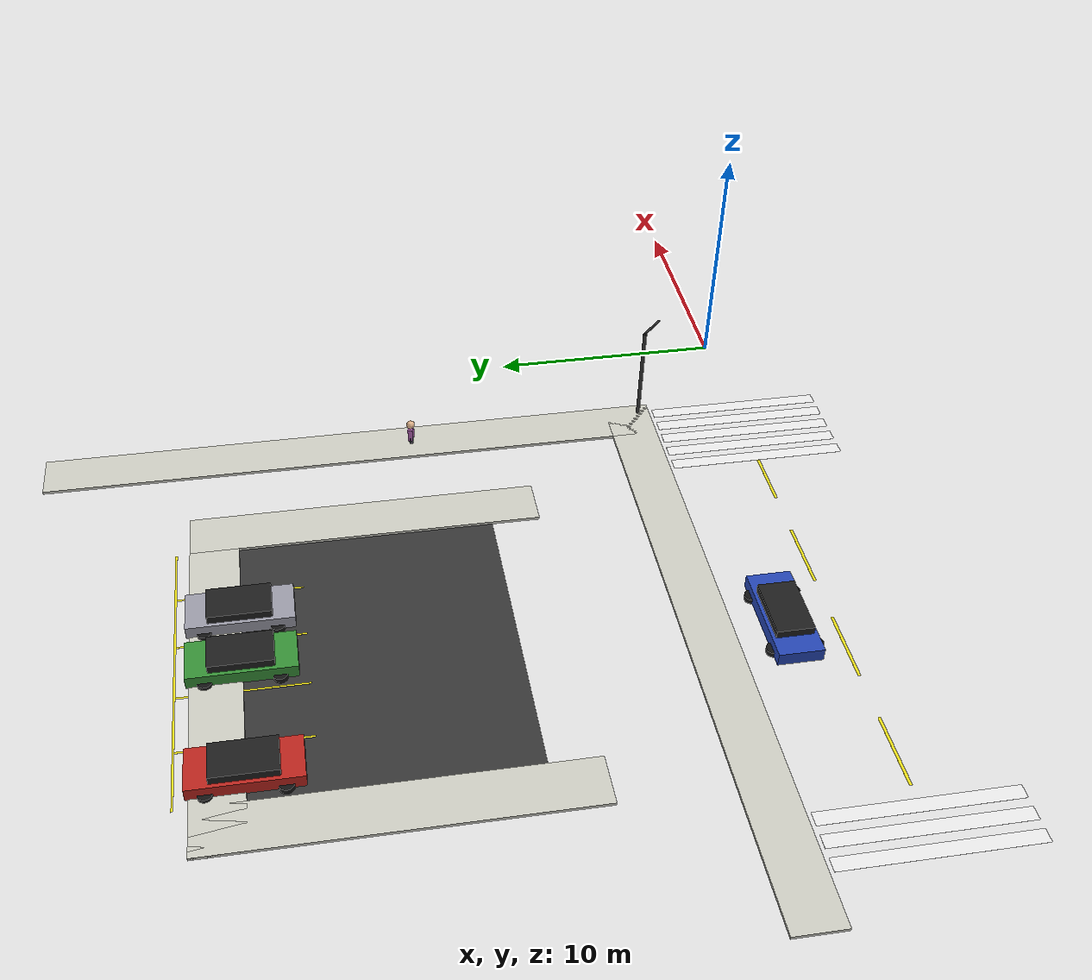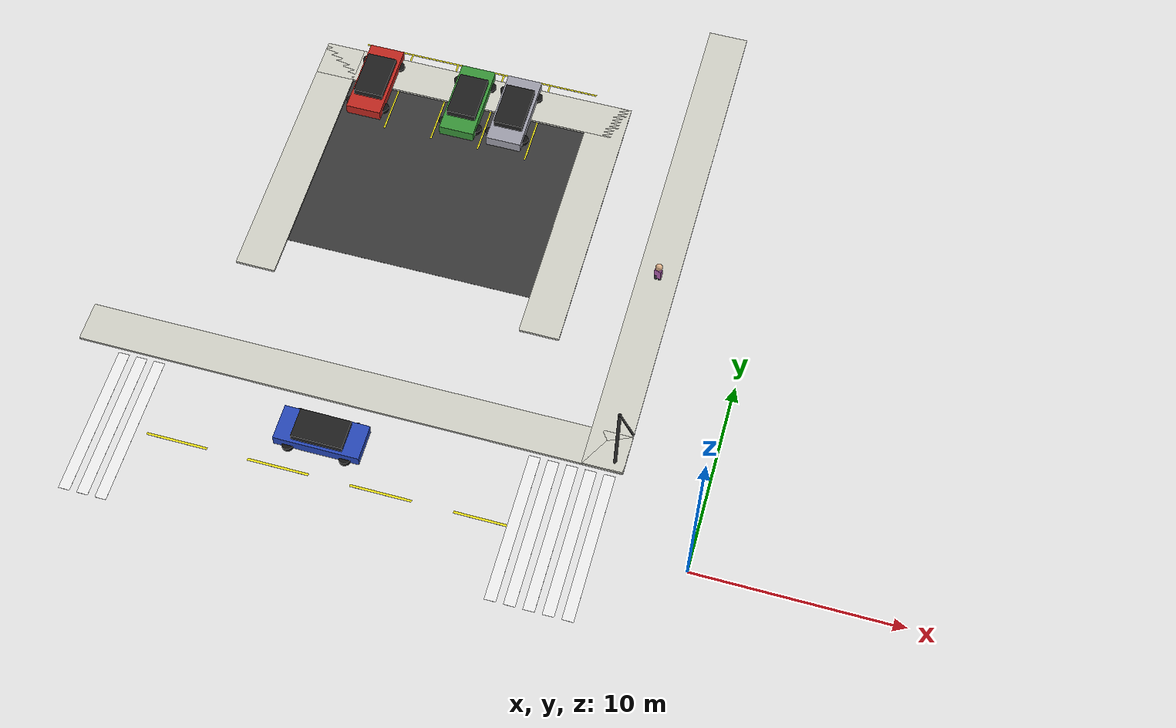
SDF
<sdf version="1.9">
 <world name="city">
  <model name="sw_v_18">
   <static>true</static>
   <pose>-5.0 17.5 0.065 0 0 0</pose>
   <link name="l">
    <collision name="c"><geometry><box><size>2.0 27.0 0.12</size></box></geometry></collision>
    <visual name="v">
     <geometry><box><size>2.0 27.0 0.12</size></box></geometry>
     <material>
      <ambient>0.82 0.82 0.78 1</ambient>
      <diffuse>0.82 0.82 0.78 1</diffuse>
      <specular>0.04 0.04 0.04 1</specular>
     </material>
    </visual>
   </link>
  </model>
  <model name="sw_h_45">
   <static>true</static>
   <pose>-17.5 5.0 0.065 0 0 0</pose>
   <link name="l">
    <collision name="c"><geometry><box><size>27.0 2.0 0.12</size></box></geometry></collision>
    <visual name="v">
     <geometry><box><size>27.0 2.0 0.12</size></box></geometry>
     <material>
      <ambient>0.82 0.82 0.78 1</ambient>
      <diffuse>0.82 0.82 0.78 1</diffuse>
      <specular>0.04 0.04 0.04 1</specular>
     </material>
    </visual>
   </link>
  </model>
  <model name="sw_corner_73">
   <static>true</static>
   <pose>-5.0 5.0 0.065 0 0 0</pose>
   <link name="l">
    <collision name="c"><geometry><box><size>2.0 2.0 0.12</size></box></geometry></collision>
    <visual name="v">
     <geometry><box><size>2.0 2.0 0.12</size></box></geometry>
     <material>
      <ambient>0.82 0.82 0.78 1</ambient>
      <diffuse>0.82 0.82 0.78 1</diffuse>
      <specular>0.04 0.04 0.04 1</specular>
     </material>
    </visual>
   </link>
  </model>
  <model name="cw_e_123">
   <static>true</static>
   <pose>-28.625 0.0 0.013000000000000001 0 0 0</pose>
   <link name="l">
    <visual name="v">
     <geometry><box><size>0.55 7.6 0.005</size></box></geometry>
     <material>
      <ambient>0.94 0.94 0.94 1</ambient>
      <diffuse>0.94 0.94 0.94 1</diffuse>
      <specular>0.04 0.04 0.04 1</specular>
     </material>
    </visual>
   </link>
  </model>
  <model name="cw_e_127">
   <static>true</static>
   <pose>-27.725 0.0 0.013000000000000001 0 0 0</pose>
   <link name="l">
    <visual name="v">
     <geometry><box><size>0.55 7.6 0.005</size></box></geometry>
     <material>
      <ambient>0.94 0.94 0.94 1</ambient>
      <diffuse>0.94 0.94 0.94 1</diffuse>
      <specular>0.04 0.04 0.04 1</specular>
     </material>
    </visual>
   </link>
  </model>
  <model name="cw_e_131">
   <static>true</static>
   <pose>-26.825 0.0 0.013000000000000001 0 0 0</pose>
   <link name="l">
    <visual name="v">
     <geometry><box><size>0.55 7.6 0.005</size></box></geometry>
     <material>
      <ambient>0.94 0.94 0.94 1</ambient>
      <diffuse>0.94 0.94 0.94 1</diffuse>
      <specular>0.04 0.04 0.04 1</specular>
     </material>
    </visual>
   </link>
  </model>
  <model name="cw_w_174">
   <static>true</static>
   <pose>-4.575 0.0 0.013000000000000001 0 0 0</pose>
   <link name="l">
    <visual name="v">
     <geometry><box><size>0.55 7.6 0.005</size></box></geometry>
     <material>
      <ambient>0.94 0.94 0.94 1</ambient>
      <diffuse>0.94 0.94 0.94 1</diffuse>
      <specular>0.04 0.04 0.04 1</specular>
     </material>
    </visual>
   </link>
  </model>
  <model name="cw_w_178">
   <static>true</static>
   <pose>-5.475 0.0 0.013000000000000001 0 0 0</pose>
   <link name="l">
    <visual name="v">
     <geometry><box><size>0.55 7.6 0.005</size></box></geometry>
     <material>
      <ambient>0.94 0.94 0.94 1</ambient>
      <diffuse>0.94 0.94 0.94 1</diffuse>
      <specular>0.04 0.04 0.04 1</specular>
     </material>
    </visual>
   </link>
  </model>
  <model name="cw_w_182">
   <static>true</static>
   <pose>-6.375 0.0 0.013000000000000001 0 0 0</pose>
   <link name="l">
    <visual name="v">
     <geometry><box><size>0.55 7.6 0.005</size></box></geometry>
     <material>
      <ambient>0.94 0.94 0.94 1</ambient>
      <diffuse>0.94 0.94 0.94 1</diffuse>
      <specular>0.04 0.04 0.04 1</specular>
     </material>
    </visual>
   </link>
  </model>
  <model name="cw_w_186">
   <static>true</static>
   <pose>-7.275 0.0 0.013000000000000001 0 0 0</pose>
   <link name="l">
    <visual name="v">
     <geometry><box><size>0.55 7.6 0.005</size></box></geometry>
     <material>
      <ambient>0.94 0.94 0.94 1</ambient>
      <diffuse>0.94 0.94 0.94 1</diffuse>
      <specular>0.04 0.04 0.04 1</specular>
     </material>
    </visual>
   </link>
  </model>
  <model name="cw_w_190">
   <static>true</static>
   <pose>-8.175 0.0 0.013000000000000001 0 0 0</pose>
   <link name="l">
    <visual name="v">
     <geometry><box><size>0.55 7.6 0.005</size></box></geometry>
     <material>
      <ambient>0.94 0.94 0.94 1</ambient>
      <diffuse>0.94 0.94 0.94 1</diffuse>
      <specular>0.04 0.04 0.04 1</specular>
     </material>
    </visual>
   </link>
  </model>
  <model name="dash_367">
   <static>true</static>
   <pose>-24.5 0.0 0.012 0 0 0</pose>
   <link name="l">
    <visual name="v">
     <geometry><box><size>3.0 0.12 0.003</size></box></geometry>
     <material>
      <ambient>0.95 0.9 0.1 1</ambient>
      <diffuse>0.95 0.9 0.1 1</diffuse>
      <specular>0.04 0.04 0.04 1</specular>
     </material>
    </visual>
   </link>
  </model>
  <model name="dash_368">
   <static>true</static>
   <pose>-19.5 0.0 0.012 0 0 0</pose>
   <link name="l">
    <visual name="v">
     <geometry><box><size>3.0 0.12 0.003</size></box></geometry>
     <material>
      <ambient>0.95 0.9 0.1 1</ambient>
      <diffuse>0.95 0.9 0.1 1</diffuse>
      <specular>0.04 0.04 0.04 1</specular>
     </material>
    </visual>
   </link>
  </model>
  <model name="dash_369">
   <static>true</static>
   <pose>-14.5 0.0 0.012 0 0 0</pose>
   <link name="l">
    <visual name="v">
     <geometry><box><size>3.0 0.12 0.003</size></box></geometry>
     <material>
      <ambient>0.95 0.9 0.1 1</ambient>
      <diffuse>0.95 0.9 0.1 1</diffuse>
      <specular>0.04 0.04 0.04 1</specular>
     </material>
    </visual>
   </link>
  </model>
  <model name="dash_370">
   <static>true</static>
   <pose>-9.5 0.0 0.012 0 0 0</pose>
   <link name="l">
    <visual name="v">
     <geometry><box><size>3.0 0.12 0.003</size></box></geometry>
     <material>
      <ambient>0.95 0.9 0.1 1</ambient>
      <diffuse>0.95 0.9 0.1 1</diffuse>
      <specular>0.04 0.04 0.04 1</specular>
     </material>
    </visual>
   </link>
  </model>
  <model name="lot1_slab_404">
   <static>true</static>
   <pose>-17.0 17.5 0.008 0 0 0</pose>
   <link name="l">
    <collision name="c"><geometry><box><size>12.5 10.5 0.005</size></box></geometry></collision>
    <visual name="v">
     <geometry><box><size>12.5 10.5 0.005</size></box></geometry>
     <material>
      <ambient>0.22 0.22 0.22 1</ambient>
      <diffuse>0.22 0.22 0.22 1</diffuse>
      <specular>0.04 0.04 0.04 1</specular>
     </material>
    </visual>
   </link>
  </model>
  <model name="lot1_ln_405">
   <static>true</static>
   <pose>-20.75 22.75 0.012 0 0 0</pose>
   <link name="l">
    <visual name="v">
     <geometry><box><size>0.08 5.0 0.003</size></box></geometry>
     <material>
      <ambient>0.95 0.9 0.1 1</ambient>
      <diffuse>0.95 0.9 0.1 1</diffuse>
      <specular>0.04 0.04 0.04 1</specular>
     </material>
    </visual>
   </link>
  </model>
  <model name="lot1_ln_406">
   <static>true</static>
   <pose>-18.25 22.75 0.012 0 0 0</pose>
   <link name="l">
    <visual name="v">
     <geometry><box><size>0.08 5.0 0.003</size></box></geometry>
     <material>
      <ambient>0.95 0.9 0.1 1</ambient>
      <diffuse>0.95 0.9 0.1 1</diffuse>
      <specular>0.04 0.04 0.04 1</specular>
     </material>
    </visual>
   </link>
  </model>
  <model name="lot1_ln_407">
   <static>true</static>
   <pose>-15.75 22.75 0.012 0 0 0</pose>
   <link name="l">
    <visual name="v">
     <geometry><box><size>0.08 5.0 0.003</size></box></geometry>
     <material>
      <ambient>0.95 0.9 0.1 1</ambient>
      <diffuse>0.95 0.9 0.1 1</diffuse>
      <specular>0.04 0.04 0.04 1</specular>
     </material>
    </visual>
   </link>
  </model>
  <model name="lot1_ln_408">
   <static>true</static>
   <pose>-13.25 22.75 0.012 0 0 0</pose>
   <link name="l">
    <visual name="v">
     <geometry><box><size>0.08 5.0 0.003</size></box></geometry>
     <material>
      <ambient>0.95 0.9 0.1 1</ambient>
      <diffuse>0.95 0.9 0.1 1</diffuse>
      <specular>0.04 0.04 0.04 1</specular>
     </material>
    </visual>
   </link>
  </model>
  <model name="lot1_back_409">
   <static>true</static>
   <pose>-17.0 25.29 0.012 0 0 0</pose>
   <link name="l">
    <visual name="v">
     <geometry><box><size>12.5 0.08 0.003</size></box></geometry>
     <material>
      <ambient>0.95 0.9 0.1 1</ambient>
      <diffuse>0.95 0.9 0.1 1</diffuse>
      <specular>0.04 0.04 0.04 1</specular>
     </material>
    </visual>
   </link>
  </model>
  <model name="lot1_car0_b_410">
   <static>true</static>
   <pose>-22.0 22.75 0.358 0 0 0</pose>
   <link name="l">
    <collision name="c"><geometry><box><size>1.8 4.2 0.55</size></box></geometry></collision>
    <visual name="v">
     <geometry><box><size>1.8 4.2 0.55</size></box></geometry>
     <material>
      <ambient>0.75 0.15 0.12 1</ambient>
      <diffuse>0.75 0.15 0.12 1</diffuse>
      <specular>0.04 0.04 0.04 1</specular>
     </material>
    </visual>
   </link>
  </model>
  <model name="lot1_car0_r_411">
   <static>true</static>
   <pose>-22.0 22.75 0.778 0 0 0</pose>
   <link name="l">
    <collision name="c"><geometry><box><size>1.5 2.5 0.38</size></box></geometry></collision>
    <visual name="v">
     <geometry><box><size>1.5 2.5 0.38</size></box></geometry>
     <material>
      <ambient>0.12 0.12 0.12 1</ambient>
      <diffuse>0.12 0.12 0.12 1</diffuse>
      <specular>0.04 0.04 0.04 1</specular>
     </material>
    </visual>
   </link>
  </model>
  <model name="lot1_car0_w_412">
   <static>true</static>
   <pose>-22.85 21.35 0.158 0 0 1.5708</pose>
   <link name="l">
    <visual name="v">
     <geometry><cylinder><radius>0.28</radius><length>0.22</length></cylinder></geometry>
     <material><ambient>0.08 0.08 0.08 1</ambient><diffuse>0.08 0.08 0.08 1</diffuse></material>
    </visual>
   </link>
  </model>
  <model name="lot1_car0_w_413">
   <static>true</static>
   <pose>-21.15 21.35 0.158 0 0 1.5708</pose>
   <link name="l">
    <visual name="v">
     <geometry><cylinder><radius>0.28</radius><length>0.22</length></cylinder></geometry>
     <material><ambient>0.08 0.08 0.08 1</ambient><diffuse>0.08 0.08 0.08 1</diffuse></material>
    </visual>
   </link>
  </model>
  <model name="lot1_car0_w_414">
   <static>true</static>
   <pose>-22.85 24.15 0.158 0 0 1.5708</pose>
   <link name="l">
    <visual name="v">
     <geometry><cylinder><radius>0.28</radius><length>0.22</length></cylinder></geometry>
     <material><ambient>0.08 0.08 0.08 1</ambient><diffuse>0.08 0.08 0.08 1</diffuse></material>
    </visual>
   </link>
  </model>
  <model name="lot1_car0_w_415">
   <static>true</static>
   <pose>-21.15 24.15 0.158 0 0 1.5708</pose>
   <link name="l">
    <visual name="v">
     <geometry><cylinder><radius>0.28</radius><length>0.22</length></cylinder></geometry>
     <material><ambient>0.08 0.08 0.08 1</ambient><diffuse>0.08 0.08 0.08 1</diffuse></material>
    </visual>
   </link>
  </model>
  <model name="lot1_car2_b_416">
   <static>true</static>
   <pose>-17.0 22.75 0.358 0 0 0</pose>
   <link name="l">
    <collision name="c"><geometry><box><size>1.8 4.2 0.55</size></box></geometry></collision>
    <visual name="v">
     <geometry><box><size>1.8 4.2 0.55</size></box></geometry>
     <material>
      <ambient>0.22 0.58 0.22 1</ambient>
      <diffuse>0.22 0.58 0.22 1</diffuse>
      <specular>0.04 0.04 0.04 1</specular>
     </material>
    </visual>
   </link>
  </model>
  <model name="lot1_car2_r_417">
   <static>true</static>
   <pose>-17.0 22.75 0.778 0 0 0</pose>
   <link name="l">
    <collision name="c"><geometry><box><size>1.5 2.5 0.38</size></box></geometry></collision>
    <visual name="v">
     <geometry><box><size>1.5 2.5 0.38</size></box></geometry>
     <material>
      <ambient>0.12 0.12 0.12 1</ambient>
      <diffuse>0.12 0.12 0.12 1</diffuse>
      <specular>0.04 0.04 0.04 1</specular>
     </material>
    </visual>
   </link>
  </model>
  <model name="lot1_car2_w_418">
   <static>true</static>
   <pose>-17.85 21.35 0.158 0 0 1.5708</pose>
   <link name="l">
    <visual name="v">
     <geometry><cylinder><radius>0.28</radius><length>0.22</length></cylinder></geometry>
     <material><ambient>0.08 0.08 0.08 1</ambient><diffuse>0.08 0.08 0.08 1</diffuse></material>
    </visual>
   </link>
  </model>
  <model name="lot1_car2_w_419">
   <static>true</static>
   <pose>-16.15 21.35 0.158 0 0 1.5708</pose>
   <link name="l">
    <visual name="v">
     <geometry><cylinder><radius>0.28</radius><length>0.22</length></cylinder></geometry>
     <material><ambient>0.08 0.08 0.08 1</ambient><diffuse>0.08 0.08 0.08 1</diffuse></material>
    </visual>
   </link>
  </model>
  <model name="lot1_car2_w_420">
   <static>true</static>
   <pose>-17.85 24.15 0.158 0 0 1.5708</pose>
   <link name="l">
    <visual name="v">
     <geometry><cylinder><radius>0.28</radius><length>0.22</length></cylinder></geometry>
     <material><ambient>0.08 0.08 0.08 1</ambient><diffuse>0.08 0.08 0.08 1</diffuse></material>
    </visual>
   </link>
  </model>
  <model name="lot1_car2_w_421">
   <static>true</static>
   <pose>-16.15 24.15 0.158 0 0 1.5708</pose>
   <link name="l">
    <visual name="v">
     <geometry><cylinder><radius>0.28</radius><length>0.22</length></cylinder></geometry>
     <material><ambient>0.08 0.08 0.08 1</ambient><diffuse>0.08 0.08 0.08 1</diffuse></material>
    </visual>
   </link>
  </model>
  <model name="lot1_car3_b_422">
   <static>true</static>
   <pose>-14.5 22.75 0.358 0 0 0</pose>
   <link name="l">
    <collision name="c"><geometry><box><size>1.8 4.2 0.55</size></box></geometry></collision>
    <visual name="v">
     <geometry><box><size>1.8 4.2 0.55</size></box></geometry>
     <material>
      <ambient>0.62 0.62 0.67 1</ambient>
      <diffuse>0.62 0.62 0.67 1</diffuse>
      <specular>0.04 0.04 0.04 1</specular>
     </material>
    </visual>
   </link>
  </model>
  <model name="lot1_car3_r_423">
   <static>true</static>
   <pose>-14.5 22.75 0.778 0 0 0</pose>
   <link name="l">
    <collision name="c"><geometry><box><size>1.5 2.5 0.38</size></box></geometry></collision>
    <visual name="v">
     <geometry><box><size>1.5 2.5 0.38</size></box></geometry>
     <material>
      <ambient>0.12 0.12 0.12 1</ambient>
      <diffuse>0.12 0.12 0.12 1</diffuse>
      <specular>0.04 0.04 0.04 1</specular>
     </material>
    </visual>
   </link>
  </model>
  <model name="lot1_car3_w_424">
   <static>true</static>
   <pose>-15.35 21.35 0.158 0 0 1.5708</pose>
   <link name="l">
    <visual name="v">
     <geometry><cylinder><radius>0.28</radius><length>0.22</length></cylinder></geometry>
     <material><ambient>0.08 0.08 0.08 1</ambient><diffuse>0.08 0.08 0.08 1</diffuse></material>
    </visual>
   </link>
  </model>
  <model name="lot1_car3_w_425">
   <static>true</static>
   <pose>-13.65 21.35 0.158 0 0 1.5708</pose>
   <link name="l">
    <visual name="v">
     <geometry><cylinder><radius>0.28</radius><length>0.22</length></cylinder></geometry>
     <material><ambient>0.08 0.08 0.08 1</ambient><diffuse>0.08 0.08 0.08 1</diffuse></material>
    </visual>
   </link>
  </model>
  <model name="lot1_car3_w_426">
   <static>true</static>
   <pose>-15.35 24.15 0.158 0 0 1.5708</pose>
   <link name="l">
    <visual name="v">
     <geometry><cylinder><radius>0.28</radius><length>0.22</length></cylinder></geometry>
     <material><ambient>0.08 0.08 0.08 1</ambient><diffuse>0.08 0.08 0.08 1</diffuse></material>
    </visual>
   </link>
  </model>
  <model name="lot1_car3_w_427">
   <static>true</static>
   <pose>-13.65 24.15 0.158 0 0 1.5708</pose>
   <link name="l">
    <visual name="v">
     <geometry><cylinder><radius>0.28</radius><length>0.22</length></cylinder></geometry>
     <material><ambient>0.08 0.08 0.08 1</ambient><diffuse>0.08 0.08 0.08 1</diffuse></material>
    </visual>
   </link>
  </model>
  <model name="lot1_swl_428">
   <static>true</static>
   <pose>-24.25 17.5 0.065 0 0 0</pose>
   <link name="l">
    <collision name="c"><geometry><box><size>2.0 14.5 0.12</size></box></geometry></collision>
    <visual name="v">
     <geometry><box><size>2.0 14.5 0.12</size></box></geometry>
     <material>
      <ambient>0.82 0.82 0.78 1</ambient>
      <diffuse>0.82 0.82 0.78 1</diffuse>
      <specular>0.04 0.04 0.04 1</specular>
     </material>
    </visual>
   </link>
  </model>
  <model name="lot1_swr_429">
   <static>true</static>
   <pose>-9.75 17.5 0.065 0 0 0</pose>
   <link name="l">
    <collision name="c"><geometry><box><size>2.0 14.5 0.12</size></box></geometry></collision>
    <visual name="v">
     <geometry><box><size>2.0 14.5 0.12</size></box></geometry>
     <material>
      <ambient>0.82 0.82 0.78 1</ambient>
      <diffuse>0.82 0.82 0.78 1</diffuse>
      <specular>0.04 0.04 0.04 1</specular>
     </material>
    </visual>
   </link>
  </model>
  <model name="lot1_swf_430">
   <static>true</static>
   <pose>-17.0 23.75 0.065 0 0 0</pose>
   <link name="l">
    <collision name="c"><geometry><box><size>16.5 2.0 0.12</size></box></geometry></collision>
    <visual name="v">
     <geometry><box><size>16.5 2.0 0.12</size></box></geometry>
     <material>
      <ambient>0.82 0.82 0.78 1</ambient>
      <diffuse>0.82 0.82 0.78 1</diffuse>
      <specular>0.04 0.04 0.04 1</specular>
     </material>
    </visual>
   </link>
  </model>
  <model name="rcar8_b_558">
   <static>true</static>
   <pose>-18 2.0 0.358 0 0 1.5708</pose>
   <link name="l">
    <collision name="c"><geometry><box><size>1.8 4.2 0.55</size></box></geometry></collision>
    <visual name="v">
     <geometry><box><size>1.8 4.2 0.55</size></box></geometry>
     <material>
      <ambient>0.15 0.28 0.72 1</ambient>
      <diffuse>0.15 0.28 0.72 1</diffuse>
      <specular>0.04 0.04 0.04 1</specular>
     </material>
    </visual>
   </link>
  </model>
  <model name="rcar8_r_559">
   <static>true</static>
   <pose>-18 2.0 0.778 0 0 1.5708</pose>
   <link name="l">
    <collision name="c"><geometry><box><size>1.5 2.5 0.38</size></box></geometry></collision>
    <visual name="v">
     <geometry><box><size>1.5 2.5 0.38</size></box></geometry>
     <material>
      <ambient>0.12 0.12 0.12 1</ambient>
      <diffuse>0.12 0.12 0.12 1</diffuse>
      <specular>0.04 0.04 0.04 1</specular>
     </material>
    </visual>
   </link>
  </model>
  <model name="rcar8_w_560">
   <static>true</static>
   <pose>-16.599996877785106 1.1500051424928792 0.158 0 0 3.1416</pose>
   <link name="l">
    <visual name="v">
     <geometry><cylinder><radius>0.28</radius><length>0.22</length></cylinder></geometry>
     <material><ambient>0.08 0.08 0.08 1</ambient><diffuse>0.08 0.08 0.08 1</diffuse></material>
    </visual>
   </link>
  </model>
  <model name="rcar8_w_561">
   <static>true</static>
   <pose>-16.600003122233783 2.85000514248141 0.158 0 0 3.1416</pose>
   <link name="l">
    <visual name="v">
     <geometry><cylinder><radius>0.28</radius><length>0.22</length></cylinder></geometry>
     <material><ambient>0.08 0.08 0.08 1</ambient><diffuse>0.08 0.08 0.08 1</diffuse></material>
    </visual>
   </link>
  </model>
  <model name="rcar8_w_562">
   <static>true</static>
   <pose>-19.399996877766217 1.1499948575185897 0.158 0 0 3.1416</pose>
   <link name="l">
    <visual name="v">
     <geometry><cylinder><radius>0.28</radius><length>0.22</length></cylinder></geometry>
     <material><ambient>0.08 0.08 0.08 1</ambient><diffuse>0.08 0.08 0.08 1</diffuse></material>
    </visual>
   </link>
  </model>
  <model name="rcar8_w_563">
   <static>true</static>
   <pose>-19.400003122214894 2.849994857507121 0.158 0 0 3.1416</pose>
   <link name="l">
    <visual name="v">
     <geometry><cylinder><radius>0.28</radius><length>0.22</length></cylinder></geometry>
     <material><ambient>0.08 0.08 0.08 1</ambient><diffuse>0.08 0.08 0.08 1</diffuse></material>
    </visual>
   </link>
  </model>
  <model name="ped7_t_598">
   <static>true</static>
   <pose>-5.0 15 0.575 0 0 2.8199999999999994</pose>
   <link name="l">
    <collision name="c"><geometry><box><size>0.35 0.2 0.6</size></box></geometry></collision>
    <visual name="v">
     <geometry><box><size>0.35 0.2 0.6</size></box></geometry>
     <material>
      <ambient>0.65 0.35 0.65 1</ambient>
      <diffuse>0.65 0.35 0.65 1</diffuse>
      <specular>0.04 0.04 0.04 1</specular>
     </material>
    </visual>
   </link>
  </model>
  <model name="ped7_h_599">
   <static>true</static>
   <pose>-5.0 15 1.075 0 0 0</pose>
   <link name="l">
    <visual name="v">
     <geometry><sphere><radius>0.18</radius></sphere></geometry>
     <material><ambient>0.9 0.72 0.56 1</ambient><diffuse>0.9 0.72 0.56 1</diffuse></material>
    </visual>
   </link>
  </model>
  <model name="ped7_l-0.1_600">
   <static>true</static>
   <pose>-5.1 15 0.275 0 0 0</pose>
   <link name="l">
    <collision name="c"><geometry><box><size>0.14 0.16 0.3</size></box></geometry></collision>
    <visual name="v">
     <geometry><box><size>0.14 0.16 0.3</size></box></geometry>
     <material>
      <ambient>0.25 0.25 0.3 1</ambient>
      <diffuse>0.25 0.25 0.3 1</diffuse>
      <specular>0.04 0.04 0.04 1</specular>
     </material>
    </visual>
   </link>
  </model>
  <model name="ped7_l0.1_601">
   <static>true</static>
   <pose>-4.9 15 0.275 0 0 0</pose>
   <link name="l">
    <collision name="c"><geometry><box><size>0.14 0.16 0.3</size></box></geometry></collision>
    <visual name="v">
     <geometry><box><size>0.14 0.16 0.3</size></box></geometry>
     <material>
      <ambient>0.25 0.25 0.3 1</ambient>
      <diffuse>0.25 0.25 0.3 1</diffuse>
      <specular>0.04 0.04 0.04 1</specular>
     </material>
    </visual>
   </link>
  </model>
  <model name="tl_0_0_2_pole_798">
   <static>true</static>
   <pose>-4.5 4.5 2.255 0 0 0</pose>
   <link name="l">
    <collision name="c">
     <geometry><cylinder><radius>0.08</radius><length>4.5</length></cylinder></geometry>
    </collision>
    <visual name="v">
     <geometry><cylinder><radius>0.08</radius><length>4.5</length></cylinder></geometry>
     <material><ambient>0.2 0.2 0.2 1</ambient><diffuse>0.2 0.2 0.2 1</diffuse></material>
    </visual>
   </link>
  </model>
  <model name="tl_0_0_2_arm_799">
   <static>true</static>
   <pose>-4.07556703849968 4.075904891336781 4.505 0 0 -0.785</pose>
   <link name="l">
    <collision name="c"><geometry><box><size>1.2 0.08 0.08</size></box></geometry></collision>
    <visual name="v">
     <geometry><box><size>1.2 0.08 0.08</size></box></geometry>
     <material>
      <ambient>0.2 0.2 0.2 1</ambient>
      <diffuse>0.2 0.2 0.2 1</diffuse>
      <specular>0.04 0.04 0.04 1</specular>
     </material>
    </visual>
   </link>
  </model>
 </world>
</sdf>
